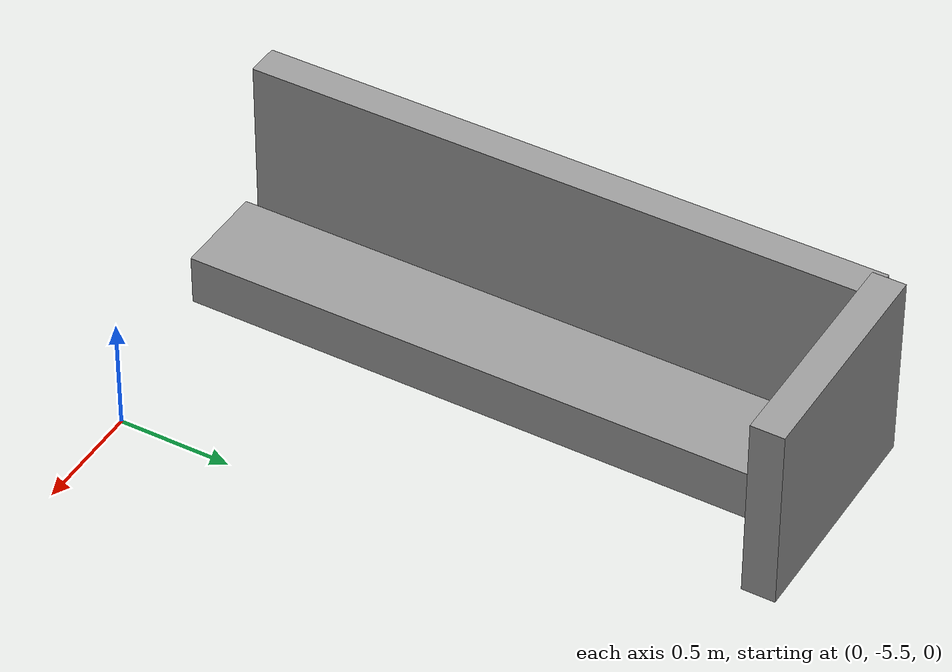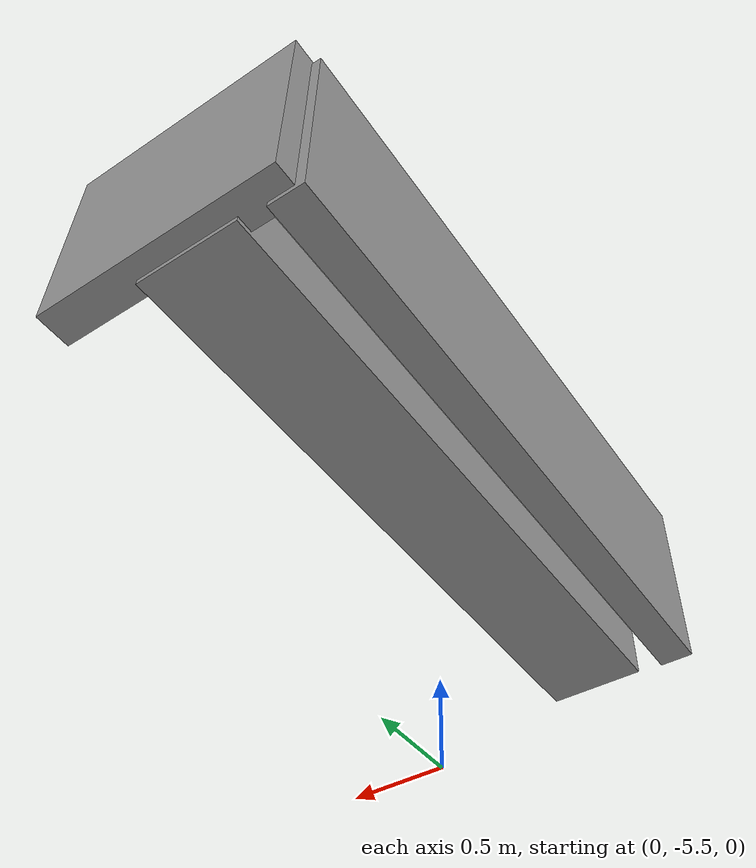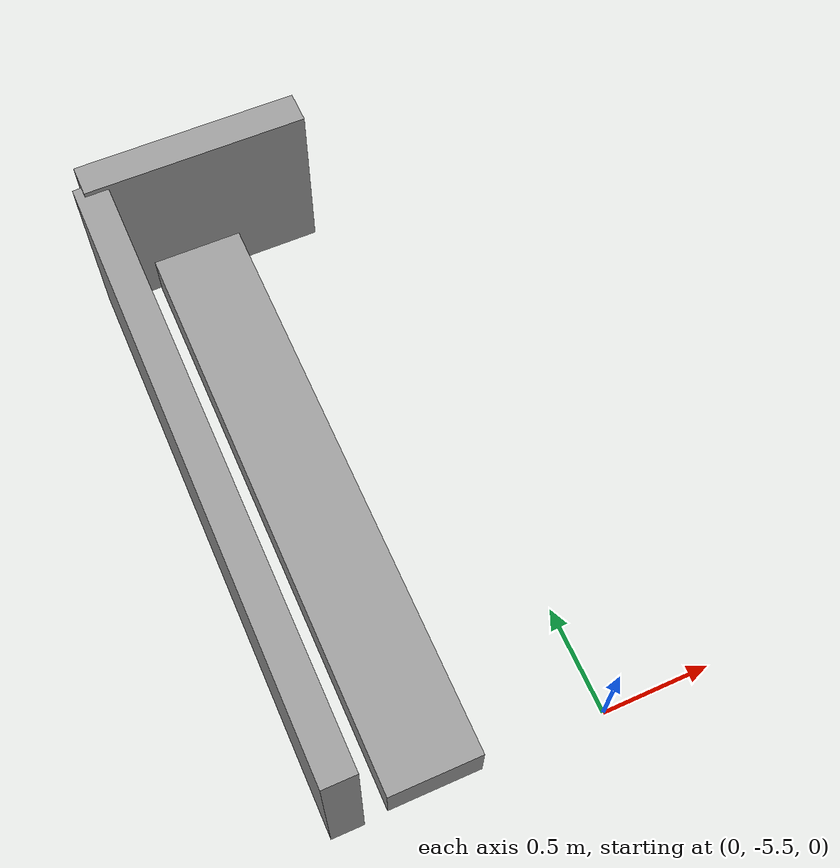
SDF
<?xml version='1.0'?>
<sdf version='1.6'>
  <model name='couch'>
    <link name='link_0'>
      <pose frame=''>-1.19145 -4.17235 0.583935 0 -0 0</pose>
      <inertial>
        <mass>0.33429</mass>
        <inertia>
          <ixx>0.232533</ixx>
          <ixy>0</ixy>
          <ixz>0</ixz>
          <iyy>0.0199772</iyy>
          <iyz>0</iyz>
          <izz>0.213725</izz>
        </inertia>
        <pose frame=''>0 0 0 0 -0 0</pose>
      </inertial>
      <gravity>1</gravity>
      <self_collide>0</self_collide>
      <kinematic>0</kinematic>
      <visual name='visual'>
        <pose frame=''>0 0 0 0 -0 0</pose>
        <geometry>
          <box>
            <size>0.14485 2.76606 0.834351</size>
          </box>
        </geometry>
        <material>
          <lighting>1</lighting>
          <script>
            <uri>file://media/materials/scripts/gazebo.material</uri>
            <name>Gazebo/Grey</name>
          </script>
          <shader type='pixel'>
            <normal_map>__default__</normal_map>
          </shader>
          <ambient>0.3 0.3 0.3 1</ambient>
          <diffuse>0.7 0.7 0.7 1</diffuse>
          <specular>0.01 0.01 0.01 1</specular>
          <emissive>0 0 0 1</emissive>
        </material>
        <transparency>0</transparency>
        <cast_shadows>1</cast_shadows>
      </visual>
      <collision name='collision'>
        <laser_retro>0</laser_retro>
        <max_contacts>10</max_contacts>
        <pose frame=''>0 0 0 0 -0 0</pose>
        <geometry>
          <box>
            <size>0.14485 2.76606 0.834351</size>
          </box>
        </geometry>
        <surface>
          <friction>
            <ode>
              <mu>1</mu>
              <mu2>1</mu2>
              <fdir1>0 0 0</fdir1>
              <slip1>0</slip1>
              <slip2>0</slip2>
            </ode>
            <torsional>
              <coefficient>1</coefficient>
              <patch_radius>0</patch_radius>
              <surface_radius>0</surface_radius>
              <use_patch_radius>1</use_patch_radius>
              <ode>
                <slip>0</slip>
              </ode>
            </torsional>
          </friction>
          <bounce>
            <restitution_coefficient>0</restitution_coefficient>
            <threshold>1e+06</threshold>
          </bounce>
          <contact>
            <collide_without_contact>0</collide_without_contact>
            <collide_without_contact_bitmask>1</collide_without_contact_bitmask>
            <collide_bitmask>1</collide_bitmask>
            <ode>
              <soft_cfm>0</soft_cfm>
              <soft_erp>0.2</soft_erp>
              <kp>1e+13</kp>
              <kd>1</kd>
              <max_vel>0.01</max_vel>
              <min_depth>0</min_depth>
            </ode>
            <bullet>
              <split_impulse>1</split_impulse>
              <split_impulse_penetration_threshold>-0.01</split_impulse_penetration_threshold>
              <soft_cfm>0</soft_cfm>
              <soft_erp>0.2</soft_erp>
              <kp>1e+13</kp>
              <kd>1</kd>
            </bullet>
          </contact>
        </surface>
      </collision>
    </link>
    <link name='link_2'>
      <pose frame=''>-0.806417 -4.15963 0.280513 0 -0 0</pose>
      <inertial>
        <mass>0.174926</mass>
        <inertia>
          <ixx>0.112278</ixx>
          <ixy>0</ixy>
          <ixz>0</ixz>
          <iyy>0.00327316</iyy>
          <iyz>0</iyz>
          <izz>0.114057</izz>
        </inertia>
        <pose frame=''>0 0 0 0 -0 0</pose>
      </inertial>
      <gravity>1</gravity>
      <self_collide>0</self_collide>
      <kinematic>0</kinematic>
      <visual name='visual'>
        <pose frame=''>0 0 0 0 -0 0</pose>
        <geometry>
          <box>
            <size>0.416255 2.76606 0.226434</size>
          </box>
        </geometry>
        <material>
          <lighting>1</lighting>
          <script>
            <uri>file://media/materials/scripts/gazebo.material</uri>
            <name>Gazebo/Grey</name>
          </script>
          <shader type='pixel'>
            <normal_map>__default__</normal_map>
          </shader>
          <ambient>0.3 0.3 0.3 1</ambient>
          <diffuse>0.7 0.7 0.7 1</diffuse>
          <specular>0.01 0.01 0.01 1</specular>
          <emissive>0 0 0 1</emissive>
        </material>
        <transparency>0</transparency>
        <cast_shadows>1</cast_shadows>
      </visual>
      <collision name='collision'>
        <laser_retro>0</laser_retro>
        <max_contacts>10</max_contacts>
        <pose frame=''>0 0 0 0 -0 0</pose>
        <geometry>
          <box>
            <size>0.416255 2.76606 0.226434</size>
          </box>
        </geometry>
        <surface>
          <friction>
            <ode>
              <mu>1</mu>
              <mu2>1</mu2>
              <fdir1>0 0 0</fdir1>
              <slip1>0</slip1>
              <slip2>0</slip2>
            </ode>
            <torsional>
              <coefficient>1</coefficient>
              <patch_radius>0</patch_radius>
              <surface_radius>0</surface_radius>
              <use_patch_radius>1</use_patch_radius>
              <ode>
                <slip>0</slip>
              </ode>
            </torsional>
          </friction>
          <bounce>
            <restitution_coefficient>0</restitution_coefficient>
            <threshold>1e+06</threshold>
          </bounce>
          <contact>
            <collide_without_contact>0</collide_without_contact>
            <collide_without_contact_bitmask>1</collide_without_contact_bitmask>
            <collide_bitmask>1</collide_bitmask>
            <ode>
              <soft_cfm>0</soft_cfm>
              <soft_erp>0.2</soft_erp>
              <kp>1e+13</kp>
              <kd>1</kd>
              <max_vel>0.01</max_vel>
              <min_depth>0</min_depth>
            </ode>
            <bullet>
              <split_impulse>1</split_impulse>
              <split_impulse_penetration_threshold>-0.01</split_impulse_penetration_threshold>
              <soft_cfm>0</soft_cfm>
              <soft_erp>0.2</soft_erp>
              <kp>1e+13</kp>
              <kd>1</kd>
            </bullet>
          </contact>
        </surface>
      </collision>
    </link>
    <link name='link_3'>
      <pose frame=''>-0.724044 -2.77007 0.606187 0 -0 0</pose>
      <inertial>
        <mass>0.172557</mass>
        <inertia>
          <ixx>0.00921711</ixx>
          <ixy>0</ixy>
          <ixz>0</ixz>
          <iyy>0.0232951</iyy>
          <iyz>0</iyz>
          <izz>0.0146814</izz>
        </inertia>
        <pose frame=''>0 0 0 0 -0 0</pose>
      </inertial>
      <gravity>1</gravity>
      <self_collide>0</self_collide>
      <kinematic>0</kinematic>
      <visual name='visual'>
        <pose frame=''>0 0 0 0 -0 0</pose>
        <geometry>
          <box>
            <size>1 0.14485 0.834351</size>
          </box>
        </geometry>
        <material>
          <lighting>1</lighting>
          <script>
            <uri>file://media/materials/scripts/gazebo.material</uri>
            <name>Gazebo/Grey</name>
          </script>
          <shader type='pixel'>
            <normal_map>__default__</normal_map>
          </shader>
          <ambient>0.3 0.3 0.3 1</ambient>
          <diffuse>0.7 0.7 0.7 1</diffuse>
          <specular>0.01 0.01 0.01 1</specular>
          <emissive>0 0 0 1</emissive>
        </material>
        <transparency>0</transparency>
        <cast_shadows>1</cast_shadows>
      </visual>
      <collision name='collision'>
        <laser_retro>0</laser_retro>
        <max_contacts>10</max_contacts>
        <pose frame=''>0 0 0 0 -0 0</pose>
        <geometry>
          <box>
            <size>1 0.14485 0.834351</size>
          </box>
        </geometry>
        <surface>
          <friction>
            <ode>
              <mu>1</mu>
              <mu2>1</mu2>
              <fdir1>0 0 0</fdir1>
              <slip1>0</slip1>
              <slip2>0</slip2>
            </ode>
            <torsional>
              <coefficient>1</coefficient>
              <patch_radius>0</patch_radius>
              <surface_radius>0</surface_radius>
              <use_patch_radius>1</use_patch_radius>
              <ode>
                <slip>0</slip>
              </ode>
            </torsional>
          </friction>
          <bounce>
            <restitution_coefficient>0</restitution_coefficient>
            <threshold>1e+06</threshold>
          </bounce>
          <contact>
            <collide_without_contact>0</collide_without_contact>
            <collide_without_contact_bitmask>1</collide_without_contact_bitmask>
            <collide_bitmask>1</collide_bitmask>
            <ode>
              <soft_cfm>0</soft_cfm>
              <soft_erp>0.2</soft_erp>
              <kp>1e+13</kp>
              <kd>1</kd>
              <max_vel>0.01</max_vel>
              <min_depth>0</min_depth>
            </ode>
            <bullet>
              <split_impulse>1</split_impulse>
              <split_impulse_penetration_threshold>-0.01</split_impulse_penetration_threshold>
              <soft_cfm>0</soft_cfm>
              <soft_erp>0.2</soft_erp>
              <kp>1e+13</kp>
              <kd>1</kd>
            </bullet>
          </contact>
        </surface>
      </collision>
    </link>
    <joint name='link_0_JOINT_0' type='fixed'>
      <parent>link_0</parent>
      <child>link_2</child>
      <pose frame=''>0 0 0 0 -0 0</pose>
      <physics>
        <ode>
          <limit>
            <cfm>0</cfm>
            <erp>0.2</erp>
          </limit>
          <suspension>
            <cfm>0</cfm>
            <erp>0.2</erp>
          </suspension>
        </ode>
      </physics>
    </joint>
    <joint name='link_0_JOINT_1' type='fixed'>
      <parent>link_0</parent>
      <child>link_3</child>
      <pose frame=''>0 0 0 0 -0 0</pose>
      <physics>
        <ode>
          <limit>
            <cfm>0</cfm>
            <erp>0.2</erp>
          </limit>
          <suspension>
            <cfm>0</cfm>
            <erp>0.2</erp>
          </suspension>
        </ode>
      </physics>
    </joint>
    <static>0</static>
    <allow_auto_disable>1</allow_auto_disable>
  </model>
</sdf>
